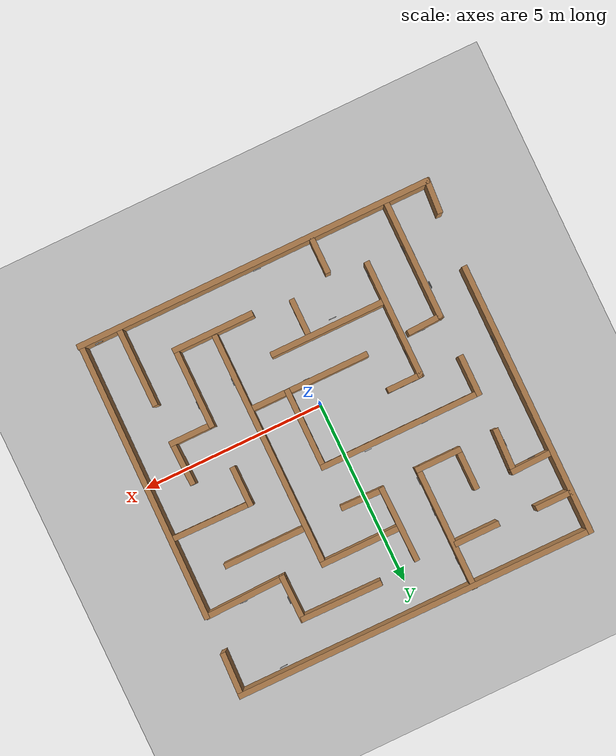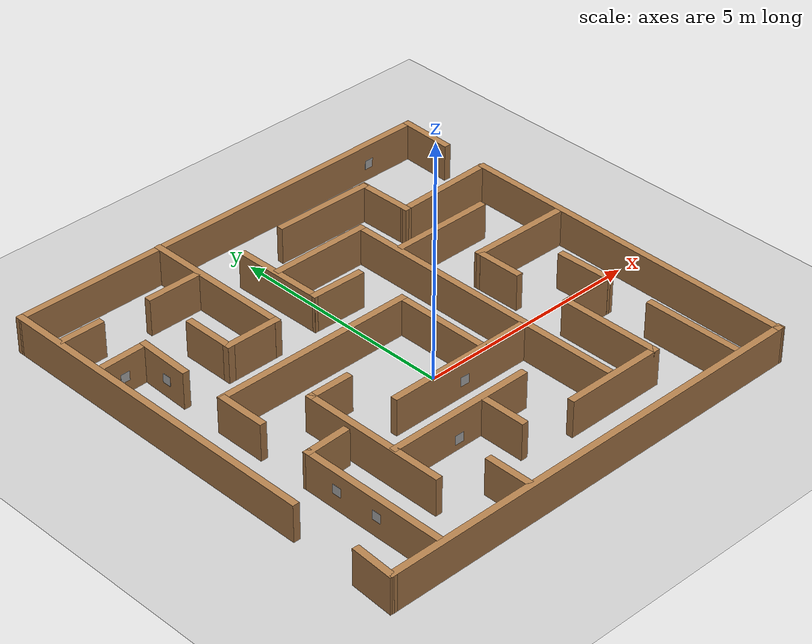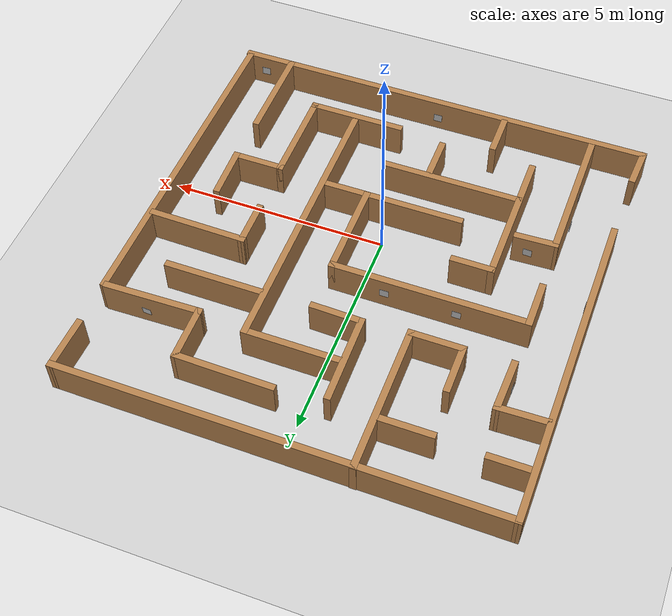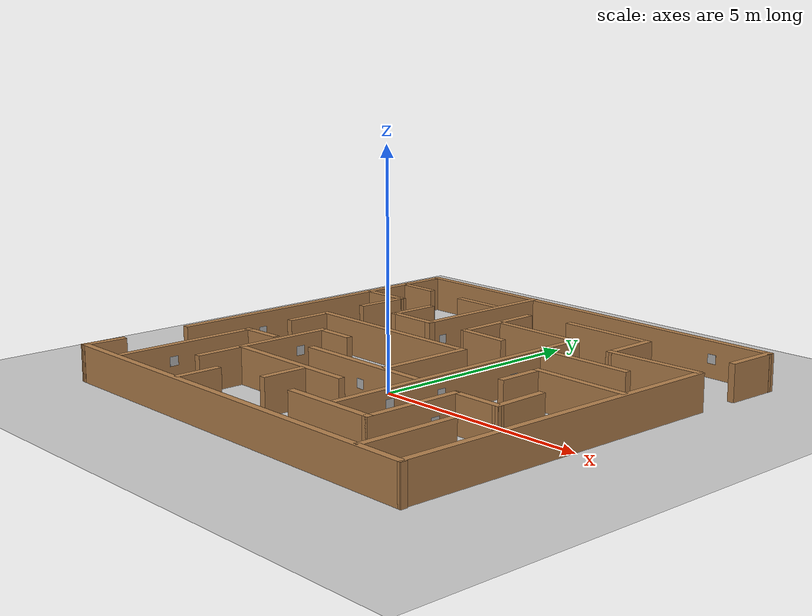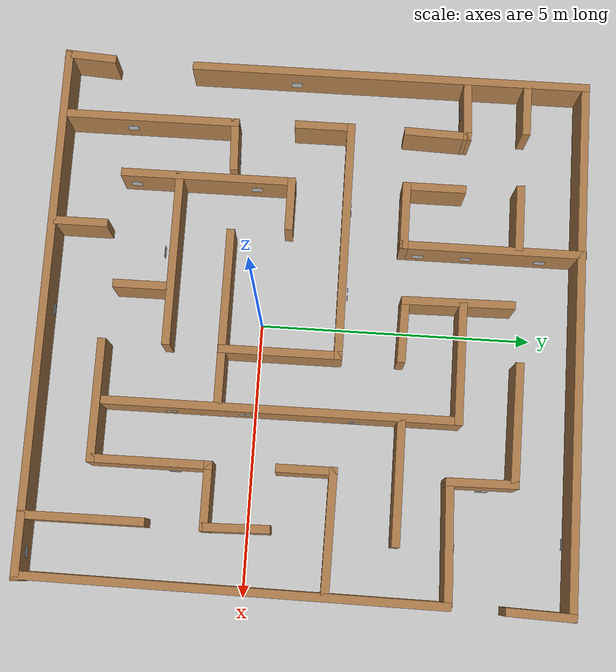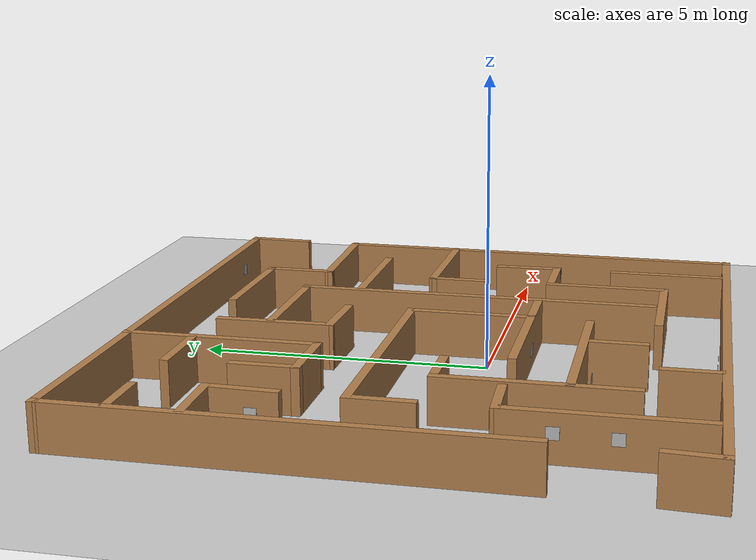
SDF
<sdf version="1.6">
 <world name="default">
  <light name="sun" type="directional">
   <pose>0 0 10 0 -0 0</pose>
   <diffuse>0.8 0.8 0.8 1</diffuse>
   <specular>0.2 0.2 0.2 1</specular>
   <attenuation>
    <range>1000</range>
    <constant>0.9</constant>
    <linear>0.01</linear>
    <quadratic>0.001</quadratic>
   </attenuation>
   <direction>-0.5 0.1 -0.9</direction>
  </light>
  <model name="ground_plane">
   <static>1</static>
   <link name="link">
    <collision name="collision">
     <geometry><plane><normal>0 0 1</normal><size>100 100</size></plane></geometry>
     <surface><friction><ode><mu>100</mu><mu2>50</mu2></ode></friction></surface>
    </collision>
    <visual name="visual">
     <cast_shadows>0</cast_shadows>
     <geometry><plane><normal>0 0 1</normal><size>100 100</size></plane></geometry>
     <material>
      <script><uri>file://media/materials/scripts/gazebo.material</uri><name>Gazebo/Grey</name></script>
     </material>
    </visual>
   </link>
  </model>
  <gravity>0 0 -9.8</gravity>
  <magnetic_field>6e-06 2.3e-05 -4.2e-05</magnetic_field>
  <atmosphere type="adiabatic"/>
  <physics name="default_physics" default="0" type="ode">
   <max_step_size>0.001</max_step_size>
   <real_time_factor>1</real_time_factor>
   <real_time_update_rate>1000</real_time_update_rate>
  </physics>
  <scene><ambient>0.4 0.4 0.4 1</ambient><background>0.7 0.7 0.7 1</background><shadows>1</shadows></scene>
  <audio><device>default</device></audio>
  <spherical_coordinates>
   <surface_model>EARTH_WGS84</surface_model>
   <latitude_deg>0</latitude_deg>
   <longitude_deg>0</longitude_deg>
   <elevation>0</elevation>
   <heading_deg>0</heading_deg>
  </spherical_coordinates>
  <model name="pokemon_maze">
   <model name="Pokemon00">
    <static>1</static>
    <link name="link">
     <visual name="visual">
      <geometry><mesh><uri>model://pokemon00/meshes/Marker0.dae</uri><scale>0.4 0.4 0.4</scale></mesh></geometry>
     </visual>
    </link>
    <pose>3.80133 6.32264 0.329693 -0.013854 0.017158 -1.54788</pose>
   </model>
   <model name="Pokemon00_0">
    <static>1</static>
    <link name="link">
     <visual name="visual">
      <geometry><mesh><uri>model://pokemon09/meshes/Marker0.dae</uri><scale>0.4 0.4 0.4</scale></mesh></geometry>
     </visual>
    </link>
    <pose>-2.12537 2.2466 0.304178 0 -0 1.58308</pose>
   </model>
   <model name="Pokemon00_1">
    <static>1</static>
    <link name="link">
     <visual name="visual">
      <geometry><mesh><uri>model://pokemon09/meshes/Marker0.dae</uri><scale>0.4 0.4 0.4</scale></mesh></geometry>
     </visual>
    </link>
    <pose>-3.05806 0.094961 0.279546 0 -0 1.5326</pose>
   </model>
   <model name="Pokemon00_2">
    <static>1</static>
    <link name="link">
     <visual name="visual">
      <geometry><mesh><uri>model://pokemon00/meshes/Marker0.dae</uri><scale>0.4 0.4 0.4</scale></mesh></geometry>
     </visual>
    </link>
    <pose>-2.44363 -1.81207 0.27728 0 -0 0</pose>
   </model>
   <model name="Pokemon01">
    <static>1</static>
    <link name="link">
     <visual name="visual">
      <geometry><mesh><uri>model://pokemon01/meshes/Marker0.dae</uri><scale>0.4 0.4 0.4</scale></mesh></geometry>
     </visual>
    </link>
    <pose>2.9549 4.86801 0.268544 0 -0 0</pose>
   </model>
   <model name="Pokemon01_0">
    <static>1</static>
    <link name="link">
     <visual name="visual">
      <geometry><mesh><uri>model://pokemon01/meshes/Marker0.dae</uri><scale>0.4 0.4 0.4</scale></mesh></geometry>
     </visual>
    </link>
    <pose>2.91928 -0.641524 0.259517 0 -0 0</pose>
   </model>
   <model name="Pokemon02">
    <static>1</static>
    <link name="link">
     <visual name="visual">
      <geometry><mesh><uri>model://pokemon02/meshes/Marker0.dae</uri><scale>0.4 0.4 0.4</scale></mesh></geometry>
     </visual>
    </link>
    <pose>-1.35428 5.80337 0.279848 0 -0 0</pose>
   </model>
   <model name="Pokemon03">
    <static>1</static>
    <link name="link">
     <visual name="visual">
      <geometry><mesh><uri>model://pokemon03/meshes/Marker0.dae</uri><scale>0.4 0.4 0.4</scale></mesh></geometry>
     </visual>
    </link>
    <pose>-2.4386 0.460372 0.343724 0 -0 0</pose>
   </model>
   <model name="Pokemon03_0">
    <static>1</static>
    <link name="link">
     <visual name="visual">
      <geometry><mesh><uri>model://pokemon03/meshes/Marker0.dae</uri><scale>0.4 0.4 0.4</scale></mesh></geometry>
     </visual>
    </link>
    <pose>0.119462 -0.04684 0.259517 0 0 -1.61874</pose>
   </model>
   <model name="Pokemon04">
    <static>1</static>
    <link name="link">
     <visual name="visual">
      <geometry><mesh><uri>model://pokemon04/meshes/Marker0.dae</uri><scale>0.4 0.4 0.4</scale></mesh></geometry>
     </visual>
    </link>
    <pose>-1.35171 4.42625 0.249775 0 -0 0</pose>
   </model>
   <model name="Pokemon04_0">
    <static>1</static>
    <link name="link">
     <visual name="visual">
      <geometry><mesh><uri>model://pokemon04/meshes/Marker0.dae</uri><scale>0.4 0.4 0.4</scale></mesh></geometry>
     </visual>
    </link>
    <pose>-3.75099 3.59725 0.320376 0 -0 0</pose>
   </model>
   <model name="Pokemon05">
    <static>1</static>
    <link name="link">
     <visual name="visual">
      <geometry><mesh><uri>model://pokemon05/meshes/Marker0.dae</uri><scale>0.4 0.4 0.4</scale></mesh></geometry>
     </visual>
    </link>
    <pose>-1.34436 3.5353 0.26096 0 -0 0</pose>
   </model>
   <model name="Pokemon05_0">
    <static>1</static>
    <link name="link">
     <visual name="visual">
      <geometry><mesh><uri>model://pokemon05/meshes/Marker0.dae</uri><scale>0.4 0.4 0.4</scale></mesh></geometry>
     </visual>
    </link>
    <pose>-3.7206 -1.77864 0.351727 0 -0 0</pose>
   </model>
   <model name="Pokemon05_1">
    <static>1</static>
    <link name="link">
     <visual name="visual">
      <geometry><mesh><uri>model://pokemon05/meshes/Marker0.dae</uri><scale>0.4 0.4 0.4</scale></mesh></geometry>
     </visual>
    </link>
    <pose>-4.60961 1.07531 0.259517 0 -0 0</pose>
   </model>
   <model name="Pokemon06">
    <static>1</static>
    <link name="link">
     <visual name="visual">
      <geometry><mesh><uri>model://pokemon06/meshes/Marker0.dae</uri><scale>0.4 0.4 0.4</scale></mesh></geometry>
     </visual>
    </link>
    <pose>-3.76034 -0.855407 0.389053 0 -0 0</pose>
   </model>
   <model name="Pokemon06_0">
    <static>1</static>
    <link name="link">
     <visual name="visual">
      <geometry><mesh><uri>model://pokemon06/meshes/Marker0.dae</uri><scale>0.4 0.4 0.4</scale></mesh></geometry>
     </visual>
    </link>
    <pose>-3.18742 6.51926 0.259517 0 -0 1.62192</pose>
   </model>
   <model name="Pokemon06_1">
    <static>1</static>
    <link name="link">
     <visual name="visual">
      <geometry><mesh><uri>model://pokemon06/meshes/Marker0.dae</uri><scale>0.4 0.4 0.4</scale></mesh></geometry>
     </visual>
    </link>
    <pose>1.83053 0.537886 0.316 0 -0 0</pose>
   </model>
   <model name="Pokemon06_2">
    <static>1</static>
    <link name="link">
     <visual name="visual">
      <geometry><mesh><uri>model://pokemon06/meshes/Marker0.dae</uri><scale>0.4 0.4 0.4</scale></mesh></geometry>
     </visual>
    </link>
    <pose>4.5139 -3.17224 0.285739 0 -0 1.61268</pose>
   </model>
   <model name="Pokemon06_3">
    <static>1</static>
    <link name="link">
     <visual name="visual">
      <geometry><mesh><uri>model://pokemon06/meshes/Marker0.dae</uri><scale>0.4 0.4 0.4</scale></mesh></geometry>
     </visual>
    </link>
    <pose>-1.14567 -1.16796 0.259517 0 0 -1.57563</pose>
   </model>
   <model name="Pokemon07">
    <static>1</static>
    <link name="link">
     <visual name="visual">
      <geometry><mesh><uri>model://pokemon07/meshes/Marker0.dae</uri><scale>0.4 0.4 0.4</scale></mesh></geometry>
     </visual>
    </link>
    <pose>4.0183 4.38507 0.265398 0.002446 0.110826 1.52159</pose>
   </model>
   <model name="Pokemon07_0">
    <static>1</static>
    <link name="link">
     <visual name="visual">
      <geometry><mesh><uri>model://pokemon07/meshes/Marker0.dae</uri><scale>0.4 0.4 0.4</scale></mesh></geometry>
     </visual>
    </link>
    <pose>1.83824 2.4971 0.238009 0 -0 0</pose>
   </model>
   <model name="Pokemon07_1">
    <static>1</static>
    <link name="link">
     <visual name="visual">
      <geometry><mesh><uri>model://pokemon07/meshes/Marker0.dae</uri><scale>0.4 0.4 0.4</scale></mesh></geometry>
     </visual>
    </link>
    <pose>-3.52466 -1.96707 0.339446 0 -0 0</pose>
   </model>
   <model name="Pokemon08">
    <static>1</static>
    <link name="link">
     <visual name="visual">
      <geometry><mesh><uri>model://pokemon08/meshes/Marker0.dae</uri><scale>0.4 0.4 0.4</scale></mesh></geometry>
     </visual>
    </link>
    <pose>-4.1856 4.22989 0.259517 0 0 -1.5753</pose>
   </model>
   <model name="Pokemon08_0">
    <static>1</static>
    <link name="link">
     <visual name="visual">
      <geometry><mesh><uri>model://pokemon08/meshes/Marker0.dae</uri><scale>0.4 0.4 0.4</scale></mesh></geometry>
     </visual>
    </link>
    <pose>-0.522348 2.26667 0.334847 0 -0 1.57996</pose>
   </model>
   <model name="Pokemon08_1">
    <static>1</static>
    <link name="link">
     <visual name="visual">
      <geometry><mesh><uri>model://pokemon08/meshes/Marker0.dae</uri><scale>0.4 0.4 0.4</scale></mesh></geometry>
     </visual>
    </link>
    <pose>1.85208 -0.786058 0.389751 0 -0 0</pose>
   </model>
   <model name="Pokemon08_2">
    <static>1</static>
    <link name="link">
     <visual name="visual">
      <geometry><mesh><uri>model://pokemon08/meshes/Marker0.dae</uri><scale>0.4 0.4 0.4</scale></mesh></geometry>
     </visual>
    </link>
    <pose>0.067957 -3.12973 0.259517 0 -0 1.56555</pose>
   </model>
   <model name="Pokemon08_3">
    <static>1</static>
    <link name="link">
     <visual name="visual">
      <geometry><mesh><uri>model://pokemon08/meshes/Marker0.dae</uri><scale>0.4 0.4 0.4</scale></mesh></geometry>
     </visual>
    </link>
    <pose>-2.45962 -0.623599 0.286656 0 -0 0</pose>
   </model>
   <model name="maze">
    <pose>0.129577 1.62467 -0.022782 0 -0 0</pose>
    <link name="Wall_0">
     <collision name="Wall_0_Collision">
      <geometry><box><size>7.5 0.15 0.8</size></box></geometry>
      <pose>0 0 0.4 0 -0 0</pose>
     </collision>
     <visual name="Wall_0_Visual">
      <pose>0 0 0.4 0 -0 0</pose>
      <geometry><box><size>7.5 0.15 0.8</size></box></geometry>
      <material>
       <script><uri>file://media/materials/scripts/gazebo.material</uri><name>Gazebo/Wood</name></script>
       <ambient>1 1 1 1</ambient>
      </material>
      <meta><layer>0</layer></meta>
     </visual>
     <pose>-4.84224 1.22328 0 0 -0 -1.5708</pose>
    </link>
    <link name="Wall_10">
     <collision name="Wall_10_Collision">
      <geometry><box><size>1.27742 0.15 0.8</size></box></geometry>
      <pose>0 0 0.4 0 -0 0</pose>
     </collision>
     <visual name="Wall_10_Visual">
      <pose>0 0 0.4 0 -0 0</pose>
      <geometry><box><size>1.27742 0.15 0.8</size></box></geometry>
      <material>
       <script><uri>file://media/materials/scripts/gazebo.material</uri><name>Gazebo/Wood</name></script>
       <ambient>1 1 1 1</ambient>
      </material>
      <meta><layer>0</layer></meta>
     </visual>
     <pose>-2.14274 1.62328 0 0 -0 3.14159</pose>
    </link>
    <link name="Wall_11">
     <collision name="Wall_11_Collision">
      <geometry><box><size>1.17589 0.15 0.8</size></box></geometry>
      <pose>0 0 0.4 0 -0 0</pose>
     </collision>
     <visual name="Wall_11_Visual">
      <pose>0 0 0.4 0 -0 0</pose>
      <geometry><box><size>1.17589 0.15 0.8</size></box></geometry>
      <material>
       <script><uri>file://media/materials/scripts/gazebo.material</uri><name>Gazebo/Wood</name></script>
       <ambient>1 1 1 1</ambient>
      </material>
      <meta><layer>0</layer></meta>
     </visual>
     <pose>-2.70624 2.13578 0 0 -0 1.5708</pose>
    </link>
    <link name="Wall_13">
     <collision name="Wall_13_Collision">
      <geometry><box><size>1.17636 0.15 0.8</size></box></geometry>
      <pose>0 0 0.4 0 -0 0</pose>
     </collision>
     <visual name="Wall_13_Visual">
      <pose>0 0 0.4 0 -0 0</pose>
      <geometry><box><size>1.17636 0.15 0.8</size></box></geometry>
      <material>
       <script><uri>file://media/materials/scripts/gazebo.material</uri><name>Gazebo/Wood</name></script>
       <ambient>1 1 1 1</ambient>
      </material>
      <meta><layer>0</layer></meta>
     </visual>
     <pose>-4.25924 2.69578 0 0 -0 0.02631</pose>
    </link>
    <link name="Wall_14">
     <collision name="Wall_14_Collision">
      <geometry><box><size>1.25033 0.15 0.8</size></box></geometry>
      <pose>0 0 0.4 0 -0 0</pose>
     </collision>
     <visual name="Wall_14_Visual">
      <pose>0 0 0.4 0 -0 0</pose>
      <geometry><box><size>1.25033 0.15 0.8</size></box></geometry>
      <material>
       <script><uri>file://media/materials/scripts/gazebo.material</uri><name>Gazebo/Wood</name></script>
       <ambient>1 1 1 1</ambient>
      </material>
      <meta><layer>0</layer></meta>
     </visual>
     <pose>-3.76374 2.15928 0 0 -0 -1.6026</pose>
    </link>
    <link name="Wall_16">
     <collision name="Wall_16_Collision">
      <geometry><box><size>1 0.15 0.8</size></box></geometry>
      <pose>0 0 0.4 0 -0 0</pose>
     </collision>
     <visual name="Wall_16_Visual">
      <pose>0 0 0.4 0 -0 0</pose>
      <geometry><box><size>1 0.15 0.8</size></box></geometry>
      <material>
       <script><uri>file://media/materials/scripts/gazebo.material</uri><name>Gazebo/Wood</name></script>
       <ambient>1 1 1 1</ambient>
      </material>
      <meta><layer>0</layer></meta>
     </visual>
     <pose>-4.34724 3.80828 0 0 -0 0</pose>
    </link>
    <link name="Wall_19">
     <collision name="Wall_19_Collision">
      <geometry><box><size>1.25 0.15 0.8</size></box></geometry>
      <pose>0 0 0.4 0 -0 0</pose>
     </collision>
     <visual name="Wall_19_Visual">
      <pose>0 0 0.4 0 -0 0</pose>
      <geometry><box><size>1.25 0.15 0.8</size></box></geometry>
      <material>
       <script><uri>file://media/materials/scripts/gazebo.material</uri><name>Gazebo/Wood</name></script>
       <ambient>1 1 1 1</ambient>
      </material>
      <meta><layer>0</layer></meta>
     </visual>
     <pose>-2.21724 3.73828 0 0 -0 0</pose>
    </link>
    <link name="Wall_2">
     <collision name="Wall_2_Collision">
      <geometry><box><size>0.965737 0.15 0.8</size></box></geometry>
      <pose>0 0 0.4 0 -0 0</pose>
     </collision>
     <visual name="Wall_2_Visual">
      <pose>0 0 0.4 0 -0 0</pose>
      <geometry><box><size>0.965737 0.15 0.8</size></box></geometry>
      <material>
       <script><uri>file://media/materials/scripts/gazebo.material</uri><name>Gazebo/Wood</name></script>
       <ambient>1 1 1 1</ambient>
      </material>
      <meta><layer>0</layer></meta>
     </visual>
     <pose>-4.90484 -4.47172 0 0 -0 -1.63606</pose>
    </link>
    <link name="Wall_21">
     <collision name="Wall_21_Collision">
      <geometry><box><size>2.07998 0.15 0.8</size></box></geometry>
      <pose>0 0 0.4 0 -0 0</pose>
     </collision>
     <visual name="Wall_21_Visual">
      <pose>0 0 0.4 0 -0 0</pose>
      <geometry><box><size>2.07998 0.15 0.8</size></box></geometry>
      <material>
       <script><uri>file://media/materials/scripts/gazebo.material</uri><name>Gazebo/Wood</name></script>
       <ambient>1 1 1 1</ambient>
      </material>
      <meta><layer>0</layer></meta>
     </visual>
     <pose>-0.546236 2.66728 0 0 -0 -1.55733</pose>
    </link>
    <link name="Wall_23">
     <collision name="Wall_23_Collision">
      <geometry><box><size>1.22422 0.15 0.8</size></box></geometry>
      <pose>0 0 0.4 0 -0 0</pose>
     </collision>
     <visual name="Wall_23_Visual">
      <pose>0 0 0.4 0 -0 0</pose>
      <geometry><box><size>1.22422 0.15 0.8</size></box></geometry>
      <material>
       <script><uri>file://media/materials/scripts/gazebo.material</uri><name>Gazebo/Wood</name></script>
       <ambient>1 1 1 1</ambient>
      </material>
      <meta><layer>0</layer></meta>
     </visual>
     <pose>0.003764 1.68928 0 0 -0 -0.024204</pose>
    </link>
    <link name="Wall_25">
     <collision name="Wall_25_Collision">
      <geometry><box><size>2.25 0.15 0.8</size></box></geometry>
      <pose>0 0 0.4 0 -0 0</pose>
     </collision>
     <visual name="Wall_25_Visual">
      <pose>0 0 0.4 0 -0 0</pose>
      <geometry><box><size>2.25 0.15 0.8</size></box></geometry>
      <material>
       <script><uri>file://media/materials/scripts/gazebo.material</uri><name>Gazebo/Wood</name></script>
       <ambient>1 1 1 1</ambient>
      </material>
      <meta><layer>0</layer></meta>
     </visual>
     <pose>0.569764 2.75328 0 0 -0 0</pose>
    </link>
    <link name="Wall_26">
     <collision name="Wall_26_Collision">
      <geometry><box><size>6.5 0.15 0.8</size></box></geometry>
      <pose>0 0 0.4 0 -0 0</pose>
     </collision>
     <visual name="Wall_26_Visual">
      <pose>0 0 0.4 0 -0 0</pose>
      <geometry><box><size>6.5 0.15 0.8</size></box></geometry>
      <material>
       <script><uri>file://media/materials/scripts/gazebo.material</uri><name>Gazebo/Wood</name></script>
       <ambient>1 1 1 1</ambient>
      </material>
      <meta><layer>0</layer></meta>
     </visual>
     <pose>1.61976 -0.421723 0 0 -0 -1.5708</pose>
    </link>
    <link name="Wall_28">
     <collision name="Wall_28_Collision">
      <geometry><box><size>1.13268 0.15 0.8</size></box></geometry>
      <pose>0 0 0.4 0 -0 0</pose>
     </collision>
     <visual name="Wall_28_Visual">
      <pose>0 0 0.4 0 -0 0</pose>
      <geometry><box><size>1.13268 0.15 0.8</size></box></geometry>
      <material>
       <script><uri>file://media/materials/scripts/gazebo.material</uri><name>Gazebo/Wood</name></script>
       <ambient>1 1 1 1</ambient>
      </material>
      <meta><layer>0</layer></meta>
     </visual>
     <pose>-3.78724 0.042777 0 0 -0 1.5708</pose>
    </link>
    <link name="Wall_29">
     <collision name="Wall_29_Collision">
      <geometry><box><size>4.5 0.15 0.8</size></box></geometry>
      <pose>0 0 0.4 0 -0 0</pose>
     </collision>
     <visual name="Wall_29_Visual">
      <pose>0 0 0.4 0 -0 0</pose>
      <geometry><box><size>4.5 0.15 0.8</size></box></geometry>
      <material>
       <script><uri>file://media/materials/scripts/gazebo.material</uri><name>Gazebo/Wood</name></script>
       <ambient>1 1 1 1</ambient>
      </material>
      <meta><layer>0</layer></meta>
     </visual>
     <pose>-1.61224 0.534277 0 0 -0 0</pose>
    </link>
    <link name="Wall_3">
     <collision name="Wall_3_Collision">
      <geometry><box><size>9.8728 0.15 0.8</size></box></geometry>
      <pose>0 0 0.4 0 -0 0</pose>
     </collision>
     <visual name="Wall_3_Visual">
      <pose>0 0 0.4 0 -0 0</pose>
      <geometry><box><size>9.8728 0.15 0.8</size></box></geometry>
      <material>
       <script><uri>file://media/materials/scripts/gazebo.material</uri><name>Gazebo/Wood</name></script>
       <ambient>1 1 1 1</ambient>
      </material>
      <meta><layer>0</layer></meta>
     </visual>
     <pose>-0.043436 -4.87872 0 0 -0 0</pose>
    </link>
    <link name="Wall_30">
     <collision name="Wall_30_Collision">
      <geometry><box><size>2.25 0.15 0.8</size></box></geometry>
      <pose>0 0 0.4 0 -0 0</pose>
     </collision>
     <visual name="Wall_30_Visual">
      <pose>0 0 0.4 0 -0 0</pose>
      <geometry><box><size>2.25 0.15 0.8</size></box></geometry>
      <material>
       <script><uri>file://media/materials/scripts/gazebo.material</uri><name>Gazebo/Wood</name></script>
       <ambient>1 1 1 1</ambient>
      </material>
      <meta><layer>0</layer></meta>
     </visual>
     <pose>0.562764 -0.515723 0 0 -0 -1.5708</pose>
    </link>
    <link name="Wall_32">
     <collision name="Wall_32_Collision">
      <geometry><box><size>3.25 0.15 0.8</size></box></geometry>
      <pose>0 0 0.4 0 -0 0</pose>
     </collision>
     <visual name="Wall_32_Visual">
      <pose>0 0 0.4 0 -0 0</pose>
      <geometry><box><size>3.25 0.15 0.8</size></box></geometry>
      <material>
       <script><uri>file://media/materials/scripts/gazebo.material</uri><name>Gazebo/Wood</name></script>
       <ambient>1 1 1 1</ambient>
      </material>
      <meta><layer>0</layer></meta>
     </visual>
     <pose>-0.056236 -1.57372 0 0 -0 0</pose>
    </link>
    <link name="Wall_34">
     <collision name="Wall_34_Collision">
      <geometry><box><size>3.24625 0.15 0.8</size></box></geometry>
      <pose>0 0 0.4 0 -0 0</pose>
     </collision>
     <visual name="Wall_34_Visual">
      <pose>0 0 0.4 0 -0 0</pose>
      <geometry><box><size>3.24625 0.15 0.8</size></box></geometry>
      <material>
       <script><uri>file://media/materials/scripts/gazebo.material</uri><name>Gazebo/Wood</name></script>
       <ambient>1 1 1 1</ambient>
      </material>
      <meta><layer>0</layer></meta>
     </visual>
     <pose>-3.75224 -3.19172 0 0 -0 1.5708</pose>
    </link>
    <link name="Wall_35">
     <collision name="Wall_35_Collision">
      <geometry><box><size>1 0.15 0.8</size></box></geometry>
      <pose>0 0 0.4 0 -0 0</pose>
     </collision>
     <visual name="Wall_35_Visual">
      <pose>0 0 0.4 0 -0 0</pose>
      <geometry><box><size>1 0.15 0.8</size></box></geometry>
      <material>
       <script><uri>file://media/materials/scripts/gazebo.material</uri><name>Gazebo/Wood</name></script>
       <ambient>1 1 1 1</ambient>
      </material>
      <meta><layer>0</layer></meta>
     </visual>
     <pose>-3.32724 -1.62622 0 0 -0 0.041153</pose>
    </link>
    <link name="Wall_37">
     <collision name="Wall_37_Collision">
      <geometry><box><size>3.25 0.15 0.8</size></box></geometry>
      <pose>0 0 0.4 0 -0 0</pose>
     </collision>
     <visual name="Wall_37_Visual">
      <pose>0 0 0.4 0 -0 0</pose>
      <geometry><box><size>3.25 0.15 0.8</size></box></geometry>
      <material>
       <script><uri>file://media/materials/scripts/gazebo.material</uri><name>Gazebo/Wood</name></script>
       <ambient>1 1 1 1</ambient>
      </material>
      <meta><layer>0</layer></meta>
     </visual>
     <pose>-2.66124 -2.06472 0 0 -0 1.5708</pose>
    </link>
    <link name="Wall_38">
     <collision name="Wall_38_Collision">
      <geometry><box><size>1 0.15 0.8</size></box></geometry>
      <pose>0 0 0.4 0 -0 0</pose>
     </collision>
     <visual name="Wall_38_Visual">
      <pose>0 0 0.4 0 -0 0</pose>
      <geometry><box><size>1 0.15 0.8</size></box></geometry>
      <material>
       <script><uri>file://media/materials/scripts/gazebo.material</uri><name>Gazebo/Wood</name></script>
       <ambient>1 1 1 1</ambient>
      </material>
      <meta><layer>0</layer></meta>
     </visual>
     <pose>-2.23624 -0.514723 0 0 -0 0</pose>
    </link>
    <link name="Wall_4">
     <collision name="Wall_4_Collision">
      <geometry><box><size>7.7 0.15 0.8</size></box></geometry>
      <pose>0 0 0.4 0 -0 0</pose>
     </collision>
     <visual name="Wall_4_Visual">
      <pose>0 0 0.4 0 -0 0</pose>
      <geometry><box><size>7.7 0.15 0.8</size></box></geometry>
      <material>
       <script><uri>file://media/materials/scripts/gazebo.material</uri><name>Gazebo/Wood</name></script>
       <ambient>1 1 1 1</ambient>
      </material>
      <meta><layer>0</layer></meta>
     </visual>
     <pose>4.83126 -1.10372 0 0 -0 1.55994</pose>
    </link>
    <link name="Wall_40">
     <collision name="Wall_40_Collision">
      <geometry><box><size>3.25 0.15 0.8</size></box></geometry>
      <pose>0 0 0.4 0 -0 0</pose>
     </collision>
     <visual name="Wall_40_Visual">
      <pose>0 0 0.4 0 -0 0</pose>
      <geometry><box><size>3.25 0.15 0.8</size></box></geometry>
      <material>
       <script><uri>file://media/materials/scripts/gazebo.material</uri><name>Gazebo/Wood</name></script>
       <ambient>1 1 1 1</ambient>
      </material>
      <meta><layer>0</layer></meta>
     </visual>
     <pose>-1.07624 -2.59472 0 0 -0 0</pose>
    </link>
    <link name="Wall_42">
     <collision name="Wall_42_Collision">
      <geometry><box><size>1 0.15 0.8</size></box></geometry>
      <pose>0 0 0.4 0 -0 0</pose>
     </collision>
     <visual name="Wall_42_Visual">
      <pose>0 0 0.4 0 -0 0</pose>
      <geometry><box><size>1 0.15 0.8</size></box></geometry>
      <material>
       <script><uri>file://media/materials/scripts/gazebo.material</uri><name>Gazebo/Wood</name></script>
       <ambient>1 1 1 1</ambient>
      </material>
      <meta><layer>0</layer></meta>
     </visual>
     <pose>-0.533236 -3.15172 0 0 -0 -1.5708</pose>
    </link>
    <link name="Wall_44">
     <collision name="Wall_44_Collision">
      <geometry><box><size>1 0.15 0.8</size></box></geometry>
      <pose>0 0 0.4 0 -0 0</pose>
     </collision>
     <visual name="Wall_44_Visual">
      <pose>0 0 0.4 0 -0 0</pose>
      <geometry><box><size>1 0.15 0.8</size></box></geometry>
      <material>
       <script><uri>file://media/materials/scripts/gazebo.material</uri><name>Gazebo/Wood</name></script>
       <ambient>1 1 1 1</ambient>
      </material>
      <meta><layer>0</layer></meta>
     </visual>
     <pose>-1.65824 -4.34872 0 0 -0 -1.5708</pose>
    </link>
    <link name="Wall_46">
     <collision name="Wall_46_Collision">
      <geometry><box><size>2.25 0.15 0.8</size></box></geometry>
      <pose>0 0 0.4 0 -0 0</pose>
     </collision>
     <visual name="Wall_46_Visual">
      <pose>0 0 0.4 0 -0 0</pose>
      <geometry><box><size>2.25 0.15 0.8</size></box></geometry>
      <material>
       <script><uri>file://media/materials/scripts/gazebo.material</uri><name>Gazebo/Wood</name></script>
       <ambient>1 1 1 1</ambient>
      </material>
      <meta><layer>0</layer></meta>
     </visual>
     <pose>3.74076 -3.81972 0 0 -0 -1.5708</pose>
    </link>
    <link name="Wall_48">
     <collision name="Wall_48_Collision">
      <geometry><box><size>2.25 0.15 0.8</size></box></geometry>
      <pose>0 0 0.4 0 -0 0</pose>
     </collision>
     <visual name="Wall_48_Visual">
      <pose>0 0 0.4 0 -0 0</pose>
      <geometry><box><size>2.25 0.15 0.8</size></box></geometry>
      <material>
       <script><uri>file://media/materials/scripts/gazebo.material</uri><name>Gazebo/Wood</name></script>
       <ambient>1 1 1 1</ambient>
      </material>
      <meta><layer>0</layer></meta>
     </visual>
     <pose>1.62476 -3.75472 0 0 -0 0</pose>
    </link>
    <link name="Wall_49">
     <collision name="Wall_49_Collision">
      <geometry><box><size>2.25 0.15 0.8</size></box></geometry>
      <pose>0 0 0.4 0 -0 0</pose>
     </collision>
     <visual name="Wall_49_Visual">
      <pose>0 0 0.4 0 -0 0</pose>
      <geometry><box><size>2.25 0.15 0.8</size></box></geometry>
      <material>
       <script><uri>file://media/materials/scripts/gazebo.material</uri><name>Gazebo/Wood</name></script>
       <ambient>1 1 1 1</ambient>
      </material>
      <meta><layer>0</layer></meta>
     </visual>
     <pose>2.67476 -2.70472 0 0 -0 1.5708</pose>
    </link>
    <link name="Wall_50">
     <collision name="Wall_50_Collision">
      <geometry><box><size>1.2394 0.15 0.8</size></box></geometry>
      <pose>0 0 0.4 0 -0 0</pose>
     </collision>
     <visual name="Wall_50_Visual">
      <pose>0 0 0.4 0 -0 0</pose>
      <geometry><box><size>1.2394 0.15 0.8</size></box></geometry>
      <material>
       <script><uri>file://media/materials/scripts/gazebo.material</uri><name>Gazebo/Wood</name></script>
       <ambient>1 1 1 1</ambient>
      </material>
      <meta><layer>0</layer></meta>
     </visual>
     <pose>3.21976 -1.65472 0 0 -0 0</pose>
    </link>
    <link name="Wall_51">
     <collision name="Wall_51_Collision">
      <geometry><box><size>1.25 0.15 0.8</size></box></geometry>
      <pose>0 0 0.4 0 -0 0</pose>
     </collision>
     <visual name="Wall_51_Visual">
      <pose>0 0 0.4 0 -0 0</pose>
      <geometry><box><size>1.25 0.15 0.8</size></box></geometry>
      <material>
       <script><uri>file://media/materials/scripts/gazebo.material</uri><name>Gazebo/Wood</name></script>
       <ambient>1 1 1 1</ambient>
      </material>
      <meta><layer>0</layer></meta>
     </visual>
     <pose>3.75126 -1.10472 0 0 -0 1.59534</pose>
    </link>
    <link name="Wall_53">
     <collision name="Wall_53_Collision">
      <geometry><box><size>1.10609 0.15 0.8</size></box></geometry>
      <pose>0 0 0.4 0 -0 0</pose>
     </collision>
     <visual name="Wall_53_Visual">
      <pose>0 0 0.4 0 -0 0</pose>
      <geometry><box><size>1.10609 0.15 0.8</size></box></geometry>
      <material>
       <script><uri>file://media/materials/scripts/gazebo.material</uri><name>Gazebo/Wood</name></script>
       <ambient>1 1 1 1</ambient>
      </material>
      <meta><layer>0</layer></meta>
     </visual>
     <pose>2.64926 0.091277 0 0 -0 1.57393</pose>
    </link>
    <link name="Wall_54">
     <collision name="Wall_54_Collision">
      <geometry><box><size>2.27727 0.15 0.8</size></box></geometry>
      <pose>0 0 0.4 0 -0 0</pose>
     </collision>
     <visual name="Wall_54_Visual">
      <pose>0 0 0.4 0 -0 0</pose>
      <geometry><box><size>2.27727 0.15 0.8</size></box></geometry>
      <material>
       <script><uri>file://media/materials/scripts/gazebo.material</uri><name>Gazebo/Wood</name></script>
       <ambient>1 1 1 1</ambient>
      </material>
      <meta><layer>0</layer></meta>
     </visual>
     <pose>3.71097 0.556071 0 0 -0 -0.01242</pose>
    </link>
    <link name="Wall_56">
     <collision name="Wall_56_Collision">
      <geometry><box><size>2.25 0.15 0.8</size></box></geometry>
      <pose>0 0 0.4 0 -0 0</pose>
     </collision>
     <visual name="Wall_56_Visual">
      <pose>0 0 0.4 0 -0 0</pose>
      <geometry><box><size>2.25 0.15 0.8</size></box></geometry>
      <material>
       <script><uri>file://media/materials/scripts/gazebo.material</uri><name>Gazebo/Wood</name></script>
       <ambient>1 1 1 1</ambient>
      </material>
      <meta><layer>0</layer></meta>
     </visual>
     <pose>2.78576 1.73228 0 0 -0 0</pose>
    </link>
    <link name="Wall_58">
     <collision name="Wall_58_Collision">
      <geometry><box><size>2.25016 0.15 0.8</size></box></geometry>
      <pose>0 0 0.4 0 -0 0</pose>
     </collision>
     <visual name="Wall_58_Visual">
      <pose>0 0 0.4 0 -0 0</pose>
      <geometry><box><size>2.25016 0.15 0.8</size></box></geometry>
      <material>
       <script><uri>file://media/materials/scripts/gazebo.material</uri><name>Gazebo/Wood</name></script>
       <ambient>1 1 1 1</ambient>
      </material>
      <meta><layer>0</layer></meta>
     </visual>
     <pose>1.61576 3.80348 0 0 -0 -0.01238</pose>
    </link>
    <link name="Wall_59">
     <collision name="Wall_59_Collision">
      <geometry><box><size>1.3033 0.15 0.8</size></box></geometry>
      <pose>0 0 0.4 0 -0 0</pose>
     </collision>
     <visual name="Wall_59_Visual">
      <pose>0 0 0.4 0 -0 0</pose>
      <geometry><box><size>1.3033 0.15 0.8</size></box></geometry>
      <material>
       <script><uri>file://media/materials/scripts/gazebo.material</uri><name>Gazebo/Wood</name></script>
       <ambient>1 1 1 1</ambient>
      </material>
      <meta><layer>0</layer></meta>
     </visual>
     <pose>2.70006 3.21388 0 0 -0 -1.55744</pose>
    </link>
    <link name="Wall_6">
     <collision name="Wall_6_Collision">
      <geometry><box><size>9.92589 0.15 0.8</size></box></geometry>
      <pose>0 0 0.4 0 -0 0</pose>
     </collision>
     <visual name="Wall_6_Visual">
      <pose>0 0 0.4 0 -0 0</pose>
      <geometry><box><size>9.92589 0.15 0.8</size></box></geometry>
      <material>
       <script><uri>file://media/materials/scripts/gazebo.material</uri><name>Gazebo/Wood</name></script>
       <ambient>1 1 1 1</ambient>
      </material>
      <meta><layer>0</layer></meta>
     </visual>
     <pose>0.045764 4.88078 0 0 -0 -0.00358</pose>
    </link>
    <link name="Wall_60">
     <collision name="Wall_60_Collision">
      <geometry><box><size>2.25017 0.15 0.8</size></box></geometry>
      <pose>0 0 0.4 0 -0 0</pose>
     </collision>
     <visual name="Wall_60_Visual">
      <pose>0 0 0.4 0 -0 0</pose>
      <geometry><box><size>2.25017 0.15 0.8</size></box></geometry>
      <material>
       <script><uri>file://media/materials/scripts/gazebo.material</uri><name>Gazebo/Wood</name></script>
       <ambient>1 1 1 1</ambient>
      </material>
      <meta><layer>0</layer></meta>
     </visual>
     <pose>3.75776 2.66378 0 0 -0 0.025233</pose>
    </link>
    <link name="Wall_7">
     <collision name="Wall_7_Collision">
      <geometry><box><size>1.25 0.15 0.8</size></box></geometry>
      <pose>0 0 0.4 0 -0 0</pose>
     </collision>
     <visual name="Wall_7_Visual">
      <pose>0 0 0.4 0 -0 0</pose>
      <geometry><box><size>1.25 0.15 0.8</size></box></geometry>
      <material>
       <script><uri>file://media/materials/scripts/gazebo.material</uri><name>Gazebo/Wood</name></script>
       <ambient>1 1 1 1</ambient>
      </material>
      <meta><layer>0</layer></meta>
     </visual>
     <pose>4.91576 4.31328 0 0 -0 -1.60351</pose>
    </link>
    <link name="Wall_9">
     <collision name="Wall_9_Collision">
      <geometry><box><size>3.42589 0.15 0.8</size></box></geometry>
      <pose>0 0 0.4 0 -0 0</pose>
     </collision>
     <visual name="Wall_9_Visual">
      <pose>0 0 0.4 0 -0 0</pose>
      <geometry><box><size>3.42589 0.15 0.8</size></box></geometry>
      <material>
       <script><uri>file://media/materials/scripts/gazebo.material</uri><name>Gazebo/Wood</name></script>
       <ambient>1 1 1 1</ambient>
      </material>
      <meta><layer>0</layer></meta>
     </visual>
     <pose>-1.57924 3.26078 0 0 -0 -1.5708</pose>
    </link>
    <static>1</static>
   </model>
   <joint name="Wall_59_JOINT_1" type="fixed">
    <parent>maze::Wall_59</parent>
    <child>Pokemon01::link</child>
    <physics>
     <ode><limit><cfm>0</cfm><erp>0.2</erp></limit><suspension><cfm>0</cfm><erp>0.2</erp></suspension></ode>
    </physics>
   </joint>
   <joint name="Wall_6_JOINT_0" type="fixed">
    <parent>maze::Wall_6</parent>
    <child>Pokemon00::link</child>
    <physics>
     <ode><limit><cfm>0</cfm><erp>0.2</erp></limit><suspension><cfm>0</cfm><erp>0.2</erp></suspension></ode>
    </physics>
   </joint>
   <joint name="Wall_9_JOINT_2" type="fixed">
    <parent>maze::Wall_9</parent>
    <child>Pokemon02::link</child>
    <physics>
     <ode><limit><cfm>0</cfm><erp>0.2</erp></limit><suspension><cfm>0</cfm><erp>0.2</erp></suspension></ode>
    </physics>
   </joint>
   <joint name="Wall_9_JOINT_3" type="fixed">
    <parent>maze::Wall_9</parent>
    <child>Pokemon04::link</child>
    <physics>
     <ode><limit><cfm>0</cfm><erp>0.2</erp></limit><suspension><cfm>0</cfm><erp>0.2</erp></suspension></ode>
    </physics>
   </joint>
   <static>0</static>
   <pose>-0.083844 -0.70919 0 0 -0 0</pose>
  </model>
 </world>
</sdf>
